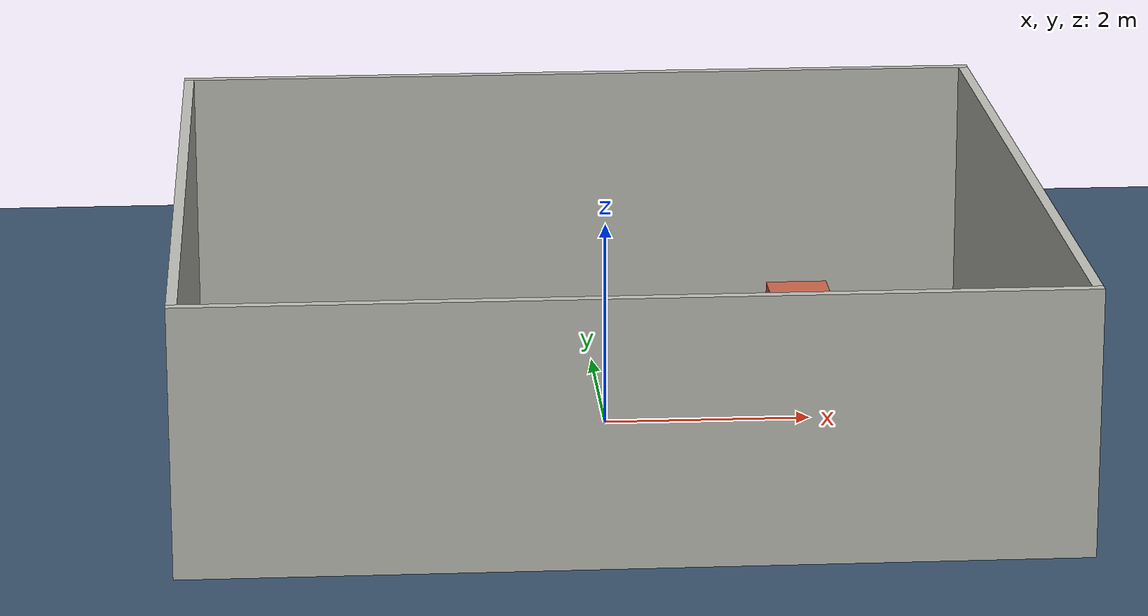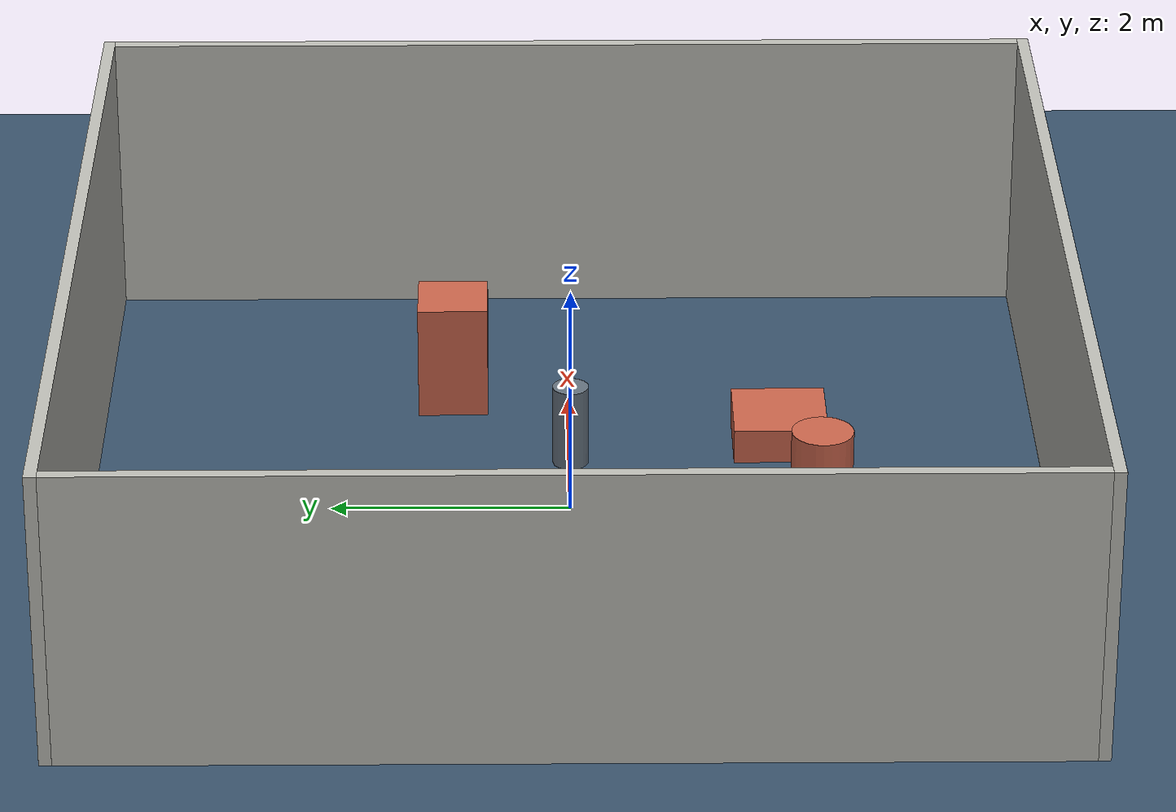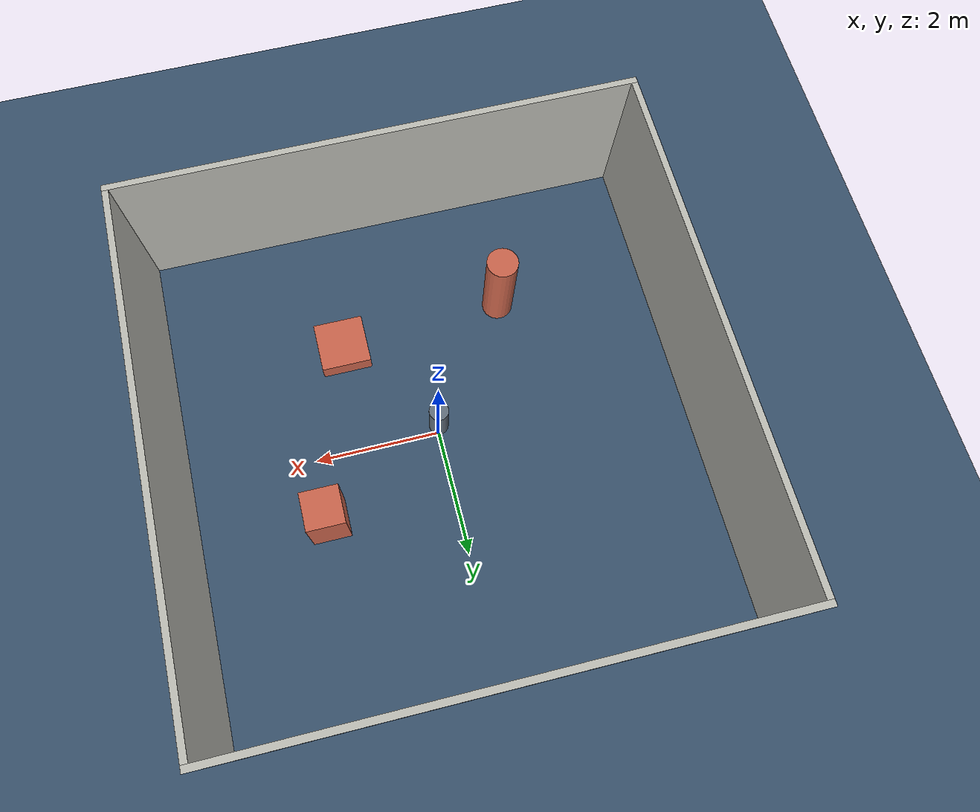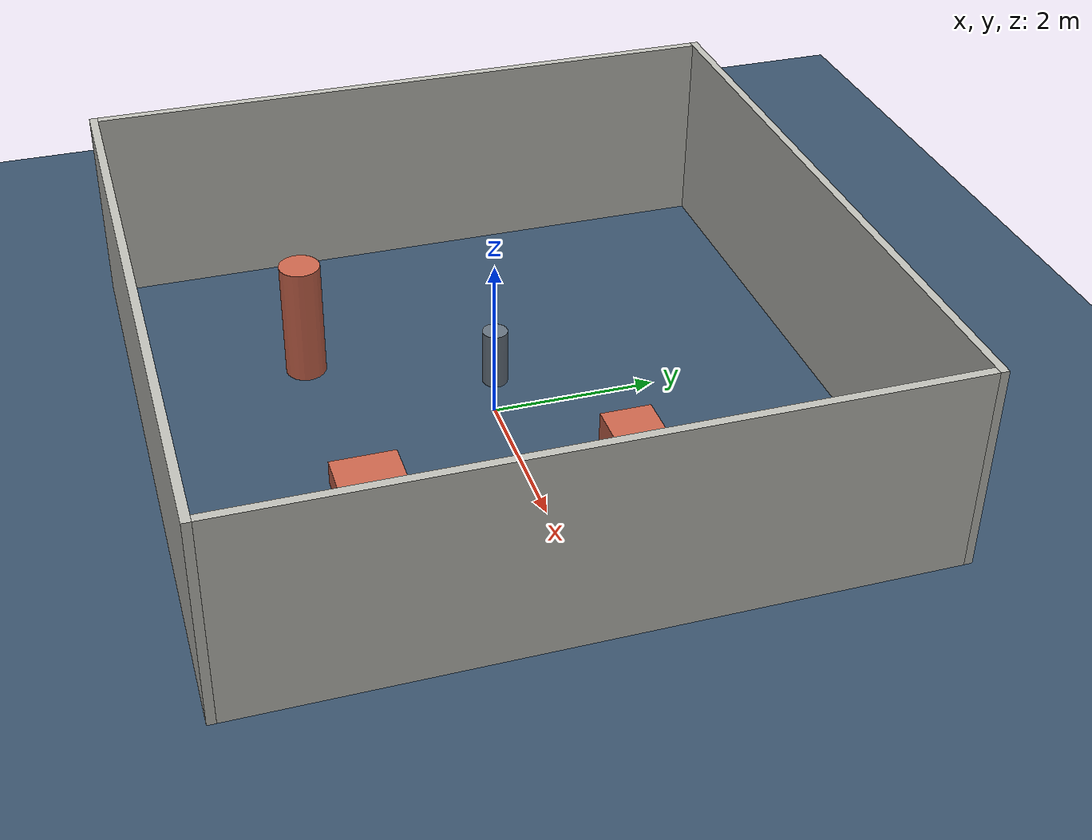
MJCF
<mujoco model="g1_perception_base">
  <compiler angle="radian"/>

  <!--
    200 Hz. Nothing here is dynamics-critical (no contact-rich locomotion, no balance),
    so this is about giving the controllers and sensors a steady tick, not fidelity.
  -->
  <option timestep="0.005" integrator="implicitfast" gravity="0 0 -9.81"/>

  <extension>
    <plugin plugin="mujoco.plugin.lidar">
      <instance name="mid360_cfg">
        <!-- 360 x 32 = 11520 rays; at 10 Hz that is ~115k pts/s against the real
             sensor's ~200k. Raising vertical resolution costs raycasts linearly. -->
        <config key="resolution" value="360 32"/>
        <config key="azimuth_range" value="-3.14159265 3.14159265"/>
        <!-- -7 deg .. +52 deg, the real Mid360 band. -->
        <config key="elevation_range" value="-0.12217305 0.90757121"/>
        <config key="max_range" value="40.0"/>
        <config key="min_range" value="0.1"/>
        <config key="update_rate" value="10.0"/>
        <config key="async" value="0"/>
      </instance>
    </plugin>
  </extension>

  <asset>
    <texture type="skybox" builtin="gradient" rgb1="0.3 0.5 0.7" rgb2="0 0 0"
             width="512" height="512"/>
    <texture type="2d" name="groundplane" builtin="checker" rgb1="0.2 0.3 0.4"
             rgb2="0.25 0.35 0.45" width="256" height="256"/>
    <material name="groundplane" texture="groundplane" texuniform="true" texrepeat="8 8"/>
    <material name="wall" rgba="0.75 0.75 0.72 1"/>
    <material name="obstacle" rgba="0.8 0.4 0.3 1"/>
  </asset>

  <worldbody>
    <light pos="0 0 4" dir="0 0 -1" diffuse="0.8 0.8 0.8"/>
    <light pos="-3 3 3" dir="0.5 -0.5 -1" diffuse="0.4 0.4 0.4"/>

    <geom name="floor" type="plane" size="20 20 0.05" material="groundplane"/>

    <geom name="wall_px" type="box" size="0.05 4.0 1.25" pos="4.05 0 1.25" material="wall"/>
    <geom name="wall_nx" type="box" size="0.05 4.0 1.25" pos="-4.05 0 1.25" material="wall"/>
    <geom name="wall_py" type="box" size="4.1 0.05 1.25" pos="0 4.05 1.25" material="wall"/>
    <geom name="wall_ny" type="box" size="4.1 0.05 1.25" pos="0 -4.05 1.25" material="wall"/>

    <!-- Obstacles at known poses: give the point cloud and depth image structure to see. -->
    <geom name="obstacle_box" type="box" size="0.3 0.3 0.5" pos="2.0 1.0 0.5"
          material="obstacle"/>
    <geom name="obstacle_cyl" type="cylinder" size="0.25 0.75" pos="-1.5 -2.0 0.75"
          material="obstacle"/>
    <geom name="obstacle_low" type="box" size="0.4 0.4 0.15" pos="1.2 -1.8 0.15"
          material="obstacle"/>

    <body name="base_link" pos="0 0 0.793">
      <joint name="base_x_joint" type="slide" axis="1 0 0" damping="20"/>
      <joint name="base_y_joint" type="slide" axis="0 1 0" damping="20"/>
      <joint name="base_yaw_joint" type="hinge" axis="0 0 1" damping="10"/>
      <inertial mass="30.0" pos="0 0 0" diaginertia="2.0 2.0 1.0"/>
      <geom name="torso" type="cylinder" size="0.15 0.35" pos="0 0 0" rgba="0.4 0.45 0.5 1"/>

      <site name="livox_frame" pos="-0.00368 0.00003 0.472434"
            quat="0.0 0.99967335 0.0 -0.02555756" size="0.015" rgba="1 0 0 1"/>

      <body name="camera_link" pos="0.05366 0.01753 0.473870"
            quat="0.91495967 0.0 0.40354530 0.0">
        <inertial mass="0.05" pos="0 0 0" diaginertia="1e-5 1e-5 1e-5"/>
        <camera name="d435i" mode="fixed" fovy="58" resolution="848 480"
                pos="0 0 0" quat="-0.5 -0.5 0.5 0.5"/>
      </body>
    </body>
  </worldbody>

  <sensor>
    <plugin name="mid360" instance="mid360_cfg" objtype="site" objname="livox_frame"/>
  </sensor>

  <actuator>
    <!-- Velocity actuators on the three planar joints. Claimed by
         velocity_controllers/JointGroupVelocityController; see config/controllers.yaml. -->
    <velocity name="base_x" joint="base_x_joint" kv="60"/>
    <velocity name="base_y" joint="base_y_joint" kv="60"/>
    <velocity name="base_yaw" joint="base_yaw_joint" kv="30"/>
  </actuator>
</mujoco>
